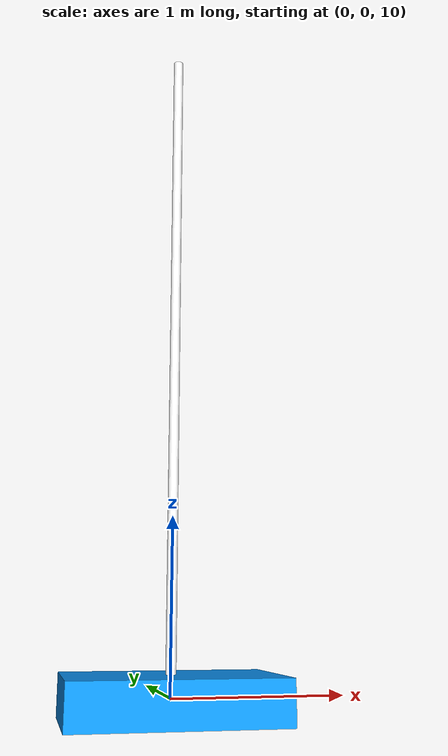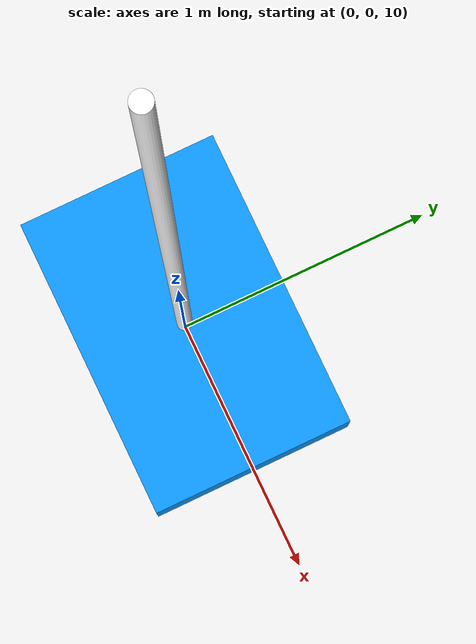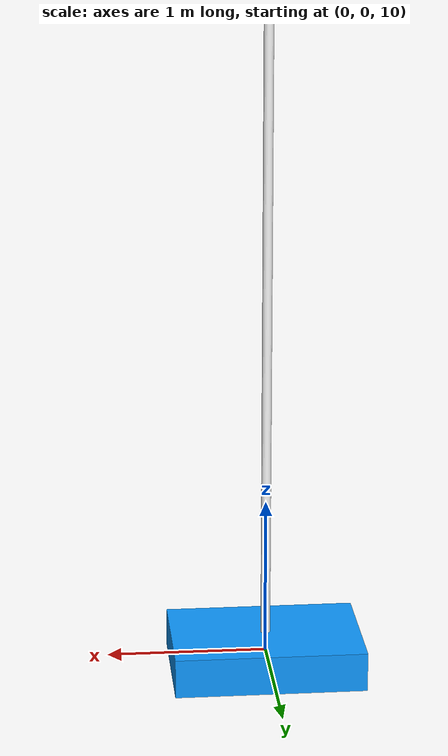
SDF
<?xml version="1.0" ?>
<sdf version="1.6">
  <model name="iris_wind_demo">
    <static>false</static>

    <link name="base_link">
      <pose>0 0 10 0 0 0</pose>
      <inertial>
        <mass>1.5</mass>
        <inertia>
          <ixx>0.0347</ixx>
          <iyy>0.0347</iyy>
          <izz>0.0617</izz>
          <ixy>0</ixy>
          <ixz>0</ixz>
          <iyz>0</iyz>
        </inertia>
      </inertial>
      <collision name="collision">
        <geometry>
          <box><size>0.28 0.28 0.08</size></box>
        </geometry>
      </collision>
      <!-- Visual-only enlargement so micro motion is visible in GUI -->
      <visual name="visual_body_big">
        <geometry>
          <box><size>1.20 0.80 0.25</size></box>
        </geometry>
        <material>
          <ambient>0.05 0.60 1.00 1</ambient>
          <diffuse>0.05 0.60 1.00 1</diffuse>
        </material>
      </visual>

      <!-- Attitude indicator mast: amplifies small roll/pitch visually -->
      <visual name="visual_mast">
        <pose>0 0 2.0 0 0 0</pose>
        <geometry>
          <cylinder>
            <radius>0.03</radius>
            <length>4.0</length>
          </cylinder>
        </geometry>
        <material>
          <ambient>1.0 1.0 1.0 1</ambient>
          <diffuse>1.0 1.0 1.0 1</diffuse>
        </material>
      </visual>
    </link>

    <plugin name="wind_field" filename="libWindFieldPlugin.so">
      <lut_json>/home/jeezen/wrf_openfoam_coupling_cache/wind_lut/20250903_1400/wind_lut.json</lut_json>
      <lut_vti>/home/jeezen/wrf_openfoam_coupling_cache/wind_lut/20250903_1400/wind_lut.vti</lut_vti>
      <link_name>base_link</link_name>
      <rho>1.225</rho>
      <C_D>1.0</C_D>
      <area>0.04</area>
      <world_to_lut_offset_x>0</world_to_lut_offset_x>
      <world_to_lut_offset_y>0</world_to_lut_offset_y>
      <world_to_lut_offset_z>0</world_to_lut_offset_z>
      <log_every_n>250</log_every_n>
    </plugin>

    <plugin name="hover_pid" filename="libHoverPidPlugin.so">
      <link_name>base_link</link_name>
      <target_x>1420</target_x>
      <target_y>-880</target_y>
      <target_z>50</target_z>
      <kp>8</kp>
      <ki>0.1</ki>
      <kd>4</kd>
      <log_every_n>250</log_every_n>
    </plugin>
  </model>
</sdf>
